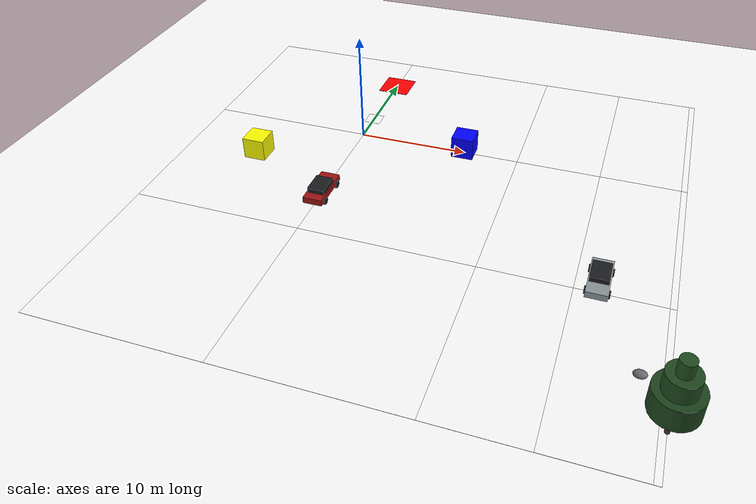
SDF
<sdf version="1.9">
 <world name="iris_runway">
  <model name="ground">
   <static>true</static>
   <link name="link">
    <collision name="c">
     <geometry><plane><normal>0 0 1</normal><size>2000 2000</size></plane></geometry>
    </collision>
   </link>
  </model>
  <include><name>far_ground</name><pose>0 0 0.003 0 0 0</pose><uri>model://far_field</uri></include>
  <model name="red_pad">
   <static>true</static>
   <pose>0 10 0.03 0 0 0</pose>
   <link name="l">
    <visual name="v">
     <geometry><box><size>3 3 0.04</size></box></geometry>
     <material><ambient>1 0 0 1</ambient><diffuse>1 0 0 1</diffuse><emissive>0.4 0 0 1</emissive></material>
    </visual>
   </link>
  </model>
  <include><uri>model://aruco_marker</uri><pose>0 3 0.03 0 0 0</pose></include>
  <model name="blue_box">
   <static>true</static>
   <pose>10 0 1 0 0 0</pose>
   <link name="l">
    <visual name="v">
     <geometry><box><size>2 2 2</size></box></geometry>
     <material>
      <ambient>0 0 1 1</ambient>
      <diffuse>0 0 1 1</diffuse>
      <pbr><metal><roughness>0.6</roughness><metalness>0.0</metalness></metal></pbr>
     </material>
    </visual>
   </link>
  </model>
  <model name="yellow_box">
   <static>true</static>
   <pose>-8 -6 1 0 0 0</pose>
   <link name="l">
    <visual name="v">
     <geometry><box><size>2 2 2</size></box></geometry>
     <material>
      <ambient>1 1 0 1</ambient>
      <diffuse>1 1 0 1</diffuse>
      <pbr><metal><roughness>0.6</roughness><metalness>0.0</metalness></metal></pbr>
     </material>
    </visual>
   </link>
  </model>
  <include>
   <name>g_5_4</name>
   <pose degrees="true">-7.5 -22.5 0.01 0 0 180</pose>
   <uri>model://grass_tile</uri>
  </include>
  <include>
   <name>g_5_5</name>
   <pose degrees="true">-7.5 -7.5 0.01 0 0 0</pose>
   <uri>model://grass_tile</uri>
  </include>
  <include>
   <name>g_5_6</name>
   <pose degrees="true">-7.5 7.5 0.01 0 0 180</pose>
   <uri>model://grass_tile</uri>
  </include>
  <include>
   <name>g_6_4</name>
   <pose degrees="true">7.5 -22.5 0.01 0 0 90</pose>
   <uri>model://grass_tile</uri>
  </include>
  <include>
   <name>g_6_5</name>
   <pose degrees="true">7.5 -7.5 0.01 0 0 270</pose>
   <uri>model://grass_tile</uri>
  </include>
  <include>
   <name>g_6_6</name>
   <pose degrees="true">7.5 7.5 0.01 0 0 90</pose>
   <uri>model://grass_tile</uri>
  </include>
  <include>
   <name>g_7_4</name>
   <pose degrees="true">22.5 -22.5 0.01 0 0 270</pose>
   <uri>model://grass_tile</uri>
  </include>
  <include>
   <name>g_7_5</name>
   <pose degrees="true">22.5 -7.5 0.01 0 0 90</pose>
   <uri>model://grass_tile</uri>
  </include>
  <include>
   <name>g_7_6</name>
   <pose degrees="true">22.5 7.5 0.01 0 0 270</pose>
   <uri>model://grass_tile_worn</uri>
  </include>
  <include><name>tree_1</name><pose>30 -26 0 0 0 0.7</pose><uri>model://tree_pine</uri></include>
  <include>
   <name>road_2_3</name>
   <pose degrees="true">26.0 -22.5 0.022 0 0 90</pose>
   <uri>model://road_tile</uri>
  </include>
  <include>
   <name>road_2_4</name>
   <pose degrees="true">26.0 -7.5 0.022 0 0 90</pose>
   <uri>model://road_tile</uri>
  </include>
  <include>
   <name>road_2_5</name>
   <pose degrees="true">26.0 7.5 0.022 0 0 90</pose>
   <uri>model://road_tile</uri>
  </include>
  <model name="car_5">
   <static>true</static>
   <pose degrees="true">24.25 -14 0 0 0 270</pose>
   <link name="l">
    <visual name="body">
     <pose degrees="true">0 0 0.55 0 0 0</pose>
     <geometry><box><size>4.0 1.7 0.55</size></box></geometry>
     <material>
      <ambient>0.30 0.32 0.33 1</ambient>
      <diffuse>0.55 0.58 0.60 1</diffuse>
      <pbr><metal><roughness>0.35</roughness><metalness>0.3</metalness></metal></pbr>
     </material>
    </visual>
    <visual name="cabin">
     <pose degrees="true">-0.2 0 1.02 0 0 0</pose>
     <geometry><box><size>2.0 1.5 0.45</size></box></geometry>
     <material>
      <ambient>0.06 0.06 0.07 1</ambient>
      <diffuse>0.10 0.11 0.13 1</diffuse>
      <pbr><metal><roughness>0.25</roughness><metalness>0.2</metalness></metal></pbr>
     </material>
    </visual>
    <visual name="w0">
     <pose>1.25 0.85 0.32 1.5708 0 0</pose>
     <geometry><cylinder><radius>0.32</radius><length>0.24</length></cylinder></geometry>
     <material>
      <ambient>0.04 0.04 0.04 1</ambient>
      <diffuse>0.08 0.08 0.08 1</diffuse>
      <pbr><metal><roughness>0.95</roughness><metalness>0.0</metalness></metal></pbr>
     </material>
    </visual>
    <visual name="w1">
     <pose>1.25 -0.85 0.32 1.5708 0 0</pose>
     <geometry><cylinder><radius>0.32</radius><length>0.24</length></cylinder></geometry>
     <material>
      <ambient>0.04 0.04 0.04 1</ambient>
      <diffuse>0.08 0.08 0.08 1</diffuse>
      <pbr><metal><roughness>0.95</roughness><metalness>0.0</metalness></metal></pbr>
     </material>
    </visual>
    <visual name="w2">
     <pose>-1.25 0.85 0.32 1.5708 0 0</pose>
     <geometry><cylinder><radius>0.32</radius><length>0.24</length></cylinder></geometry>
     <material>
      <ambient>0.04 0.04 0.04 1</ambient>
      <diffuse>0.08 0.08 0.08 1</diffuse>
      <pbr><metal><roughness>0.95</roughness><metalness>0.0</metalness></metal></pbr>
     </material>
    </visual>
    <visual name="w3">
     <pose>-1.25 -0.85 0.32 1.5708 0 0</pose>
     <geometry><cylinder><radius>0.32</radius><length>0.24</length></cylinder></geometry>
     <material>
      <ambient>0.04 0.04 0.04 1</ambient>
      <diffuse>0.08 0.08 0.08 1</diffuse>
      <pbr><metal><roughness>0.95</roughness><metalness>0.0</metalness></metal></pbr>
     </material>
    </visual>
   </link>
  </model>
  <model name="rock_0">
   <static>true</static>
   <pose degrees="true">28 -22 0.17 0 0 0</pose>
   <link name="l">
    <visual name="v">
     <geometry><ellipsoid><radii>0.5 0.38 0.25</radii></ellipsoid></geometry>
     <material>
      <ambient>0.23 0.23 0.24 1</ambient>
      <diffuse>0.42 0.42 0.44 1</diffuse>
      <pbr><metal><roughness>0.98</roughness><metalness>0.0</metalness></metal></pbr>
     </material>
    </visual>
   </link>
  </model>
  <model name="red_car_moving">
   <pose degrees="true">0 -10 0 0 0 90</pose>
   <link name="l">
    <gravity>false</gravity>
    <inertial>
     <mass>1000</mass>
     <inertia><ixx>500</ixx><iyy>1500</iyy><izz>1800</izz><ixy>0</ixy><ixz>0</ixz><iyz>0</iyz></inertia>
    </inertial>
    <visual name="body">
     <pose degrees="true">0 0 0.55 0 0 0</pose>
     <geometry><box><size>4.0 1.7 0.55</size></box></geometry>
     <material>
      <ambient>0.34 0.04 0.04 1</ambient>
      <diffuse>0.62 0.07 0.07 1</diffuse>
      <pbr><metal><roughness>0.35</roughness><metalness>0.3</metalness></metal></pbr>
     </material>
    </visual>
    <visual name="cabin">
     <pose degrees="true">-0.2 0 1.02 0 0 0</pose>
     <geometry><box><size>2.0 1.5 0.45</size></box></geometry>
     <material>
      <ambient>0.06 0.06 0.07 1</ambient>
      <diffuse>0.10 0.11 0.13 1</diffuse>
      <pbr><metal><roughness>0.25</roughness><metalness>0.2</metalness></metal></pbr>
     </material>
    </visual>
    <visual name="w0">
     <pose>1.25 0.85 0.32 1.5708 0 0</pose>
     <geometry><cylinder><radius>0.32</radius><length>0.24</length></cylinder></geometry>
     <material>
      <ambient>0.04 0.04 0.04 1</ambient>
      <diffuse>0.08 0.08 0.08 1</diffuse>
      <pbr><metal><roughness>0.95</roughness><metalness>0.0</metalness></metal></pbr>
     </material>
    </visual>
    <visual name="w1">
     <pose>1.25 -0.85 0.32 1.5708 0 0</pose>
     <geometry><cylinder><radius>0.32</radius><length>0.24</length></cylinder></geometry>
     <material>
      <ambient>0.04 0.04 0.04 1</ambient>
      <diffuse>0.08 0.08 0.08 1</diffuse>
      <pbr><metal><roughness>0.95</roughness><metalness>0.0</metalness></metal></pbr>
     </material>
    </visual>
    <visual name="w2">
     <pose>-1.25 0.85 0.32 1.5708 0 0</pose>
     <geometry><cylinder><radius>0.32</radius><length>0.24</length></cylinder></geometry>
     <material>
      <ambient>0.04 0.04 0.04 1</ambient>
      <diffuse>0.08 0.08 0.08 1</diffuse>
      <pbr><metal><roughness>0.95</roughness><metalness>0.0</metalness></metal></pbr>
     </material>
    </visual>
    <visual name="w3">
     <pose>-1.25 -0.85 0.32 1.5708 0 0</pose>
     <geometry><cylinder><radius>0.32</radius><length>0.24</length></cylinder></geometry>
     <material>
      <ambient>0.04 0.04 0.04 1</ambient>
      <diffuse>0.08 0.08 0.08 1</diffuse>
      <pbr><metal><roughness>0.95</roughness><metalness>0.0</metalness></metal></pbr>
     </material>
    </visual>
   </link>
   <plugin filename="gz-sim-velocity-control-system" name="gz::sim::systems::VelocityControl">
    <initial_linear>2.0 0 0</initial_linear>
    <initial_angular>0 0 0.2</initial_angular>
   </plugin>
  </model>
 </world>
</sdf>
